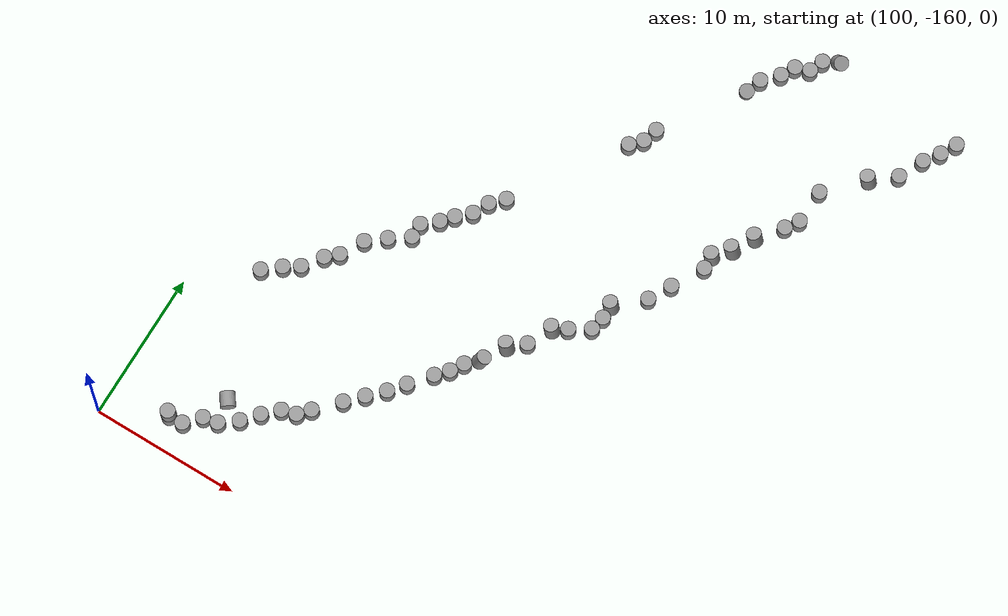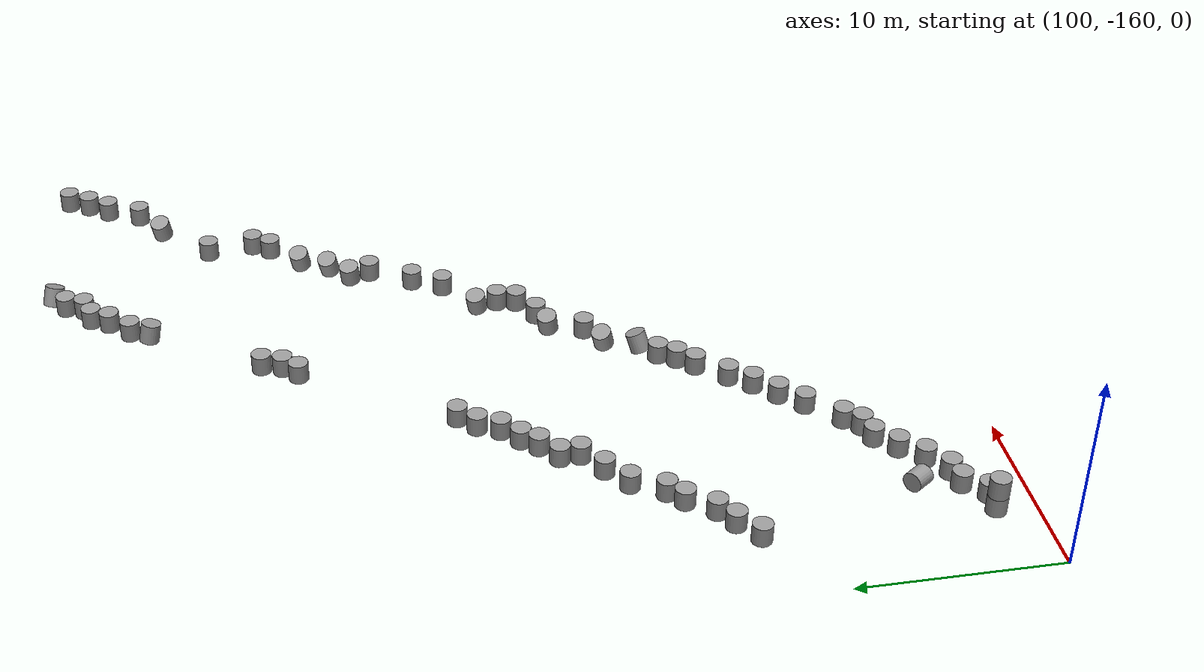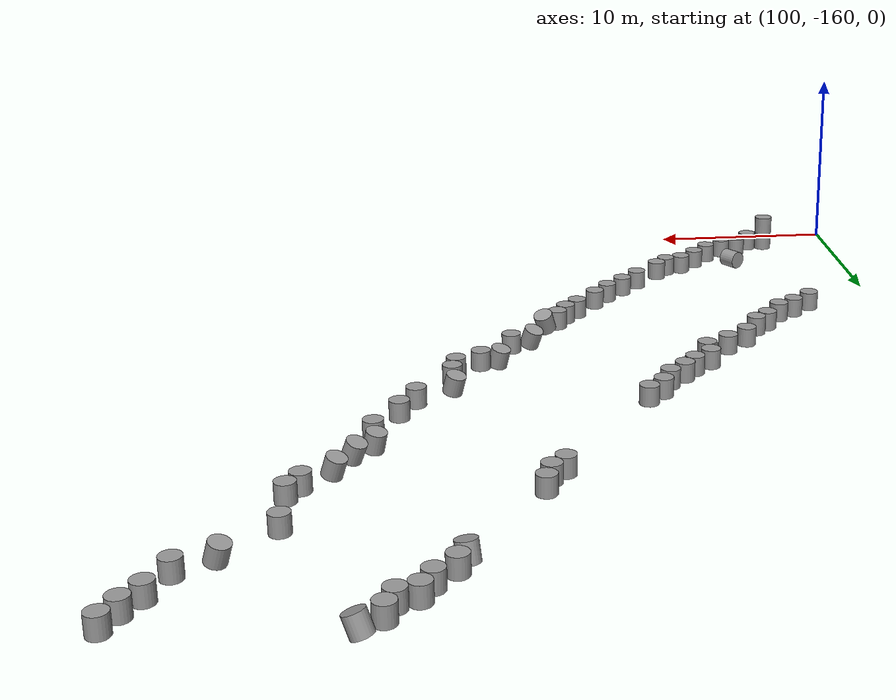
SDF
<sdf version="1.7">
 <world name="default">
  <model name="unit_cylinder_85_clone_244_clone_804">
   <pose>137.566 -116.461 0.451122 0.00022 0.000364 0.000464</pose>
   <link name="link">
    <inertial>
     <mass>1</mass>
     <inertia><ixx>0.145833</ixx><ixy>0</ixy><ixz>0</ixz><iyy>0.145833</iyy><iyz>0</iyz><izz>0.125</izz></inertia>
    </inertial>
    <collision name="collision">
     <geometry><cylinder><radius>0.5</radius><length>1</length></cylinder></geometry>
    </collision>
    <visual name="visual">
     <geometry><cylinder><radius>0.5</radius><length>1</length></cylinder></geometry>
     <material>
      <script><name>Gazebo/Grey</name><uri>file://media/materials/scripts/gazebo.material</uri></script>
     </material>
    </visual>
   </link>
  </model>
  <model name="unit_cylinder_85_clone_244_clone_805">
   <pose>137 -117.517 0.451098 0.000221 0.000364 0.000545</pose>
   <link name="link">
    <inertial>
     <mass>1</mass>
     <inertia><ixx>0.145833</ixx><ixy>0</ixy><ixz>0</ixz><iyy>0.145833</iyy><iyz>0</iyz><izz>0.125</izz></inertia>
    </inertial>
    <collision name="collision">
     <geometry><cylinder><radius>0.5</radius><length>1</length></cylinder></geometry>
    </collision>
    <visual name="visual">
     <geometry><cylinder><radius>0.5</radius><length>1</length></cylinder></geometry>
     <material>
      <script><name>Gazebo/Grey</name><uri>file://media/materials/scripts/gazebo.material</uri></script>
     </material>
    </visual>
   </link>
  </model>
  <model name="unit_cylinder_85_clone_244_clone_806">
   <pose>136.281 -118.544 0.451133 0.000222 0.000363 0.000504</pose>
   <link name="link">
    <inertial>
     <mass>1</mass>
     <inertia><ixx>0.145833</ixx><ixy>0</ixy><ixz>0</ixz><iyy>0.145833</iyy><iyz>0</iyz><izz>0.125</izz></inertia>
    </inertial>
    <collision name="collision">
     <geometry><cylinder><radius>0.5</radius><length>1</length></cylinder></geometry>
    </collision>
    <visual name="visual">
     <geometry><cylinder><radius>0.5</radius><length>1</length></cylinder></geometry>
     <material>
      <script><name>Gazebo/Grey</name><uri>file://media/materials/scripts/gazebo.material</uri></script>
     </material>
    </visual>
   </link>
  </model>
  <model name="unit_cylinder_85_clone_244_clone_811">
   <pose>128.316 -115.558 0.403362 0.201475 0.339756 -0.023781</pose>
   <link name="link">
    <inertial>
     <mass>1</mass>
     <inertia><ixx>0.145833</ixx><ixy>0</ixy><ixz>0</ixz><iyy>0.145833</iyy><iyz>0</iyz><izz>0.125</izz></inertia>
    </inertial>
    <collision name="collision">
     <geometry><cylinder><radius>0.5</radius><length>1</length></cylinder></geometry>
    </collision>
    <visual name="visual">
     <geometry><cylinder><radius>0.5</radius><length>1</length></cylinder></geometry>
     <material>
      <script><name>Gazebo/Grey</name><uri>file://media/materials/scripts/gazebo.material</uri></script>
     </material>
    </visual>
   </link>
  </model>
  <model name="unit_cylinder_85_clone_244_clone_812">
   <pose>127.369 -116.179 0.450855 -0.000849 -0.001486 -0.054355</pose>
   <link name="link">
    <inertial>
     <mass>1</mass>
     <inertia><ixx>0.145833</ixx><ixy>0</ixy><ixz>0</ixz><iyy>0.145833</iyy><iyz>0</iyz><izz>0.125</izz></inertia>
    </inertial>
    <collision name="collision">
     <geometry><cylinder><radius>0.5</radius><length>1</length></cylinder></geometry>
    </collision>
    <visual name="visual">
     <geometry><cylinder><radius>0.5</radius><length>1</length></cylinder></geometry>
     <material>
      <script><name>Gazebo/Grey</name><uri>file://media/materials/scripts/gazebo.material</uri></script>
     </material>
    </visual>
   </link>
  </model>
  <model name="unit_cylinder_85_clone_244_clone_813">
   <pose>126.992 -117.105 0.451271 -4e-06 -1.8e-05 -0.402812</pose>
   <link name="link">
    <inertial>
     <mass>1</mass>
     <inertia><ixx>0.145833</ixx><ixy>0</ixy><ixz>0</ixz><iyy>0.145833</iyy><iyz>0</iyz><izz>0.125</izz></inertia>
    </inertial>
    <collision name="collision">
     <geometry><cylinder><radius>0.5</radius><length>1</length></cylinder></geometry>
    </collision>
    <visual name="visual">
     <geometry><cylinder><radius>0.5</radius><length>1</length></cylinder></geometry>
     <material>
      <script><name>Gazebo/Grey</name><uri>file://media/materials/scripts/gazebo.material</uri></script>
     </material>
    </visual>
   </link>
  </model>
  <model name="unit_cylinder_85_clone_244_clone_814">
   <pose>126.053 -117.448 0.450006 1.2e-05 -3e-06 -0.318125</pose>
   <link name="link">
    <inertial>
     <mass>1</mass>
     <inertia><ixx>0.145833</ixx><ixy>0</ixy><ixz>0</ixz><iyy>0.145833</iyy><iyz>0</iyz><izz>0.125</izz></inertia>
    </inertial>
    <collision name="collision">
     <geometry><cylinder><radius>0.5</radius><length>1</length></cylinder></geometry>
    </collision>
    <visual name="visual">
     <geometry><cylinder><radius>0.5</radius><length>1</length></cylinder></geometry>
     <material>
      <script><name>Gazebo/Grey</name><uri>file://media/materials/scripts/gazebo.material</uri></script>
     </material>
    </visual>
   </link>
  </model>
  <model name="unit_cylinder_85_clone_244_clone_815">
   <pose>125.552 -118.352 0.450065 -9.3e-05 -8.9e-05 0.246532</pose>
   <link name="link">
    <inertial>
     <mass>1</mass>
     <inertia><ixx>0.145833</ixx><ixy>0</ixy><ixz>0</ixz><iyy>0.145833</iyy><iyz>0</iyz><izz>0.125</izz></inertia>
    </inertial>
    <collision name="collision">
     <geometry><cylinder><radius>0.5</radius><length>1</length></cylinder></geometry>
    </collision>
    <visual name="visual">
     <geometry><cylinder><radius>0.5</radius><length>1</length></cylinder></geometry>
     <material>
      <script><name>Gazebo/Grey</name><uri>file://media/materials/scripts/gazebo.material</uri></script>
     </material>
    </visual>
   </link>
  </model>
  <model name="unit_cylinder_85_clone_244_clone_835">
   <pose>135.488 -120.213 0.451052 0.000219 0.000366 0.000501</pose>
   <link name="link">
    <inertial>
     <mass>1</mass>
     <inertia><ixx>0.145833</ixx><ixy>0</ixy><ixz>0</ixz><iyy>0.145833</iyy><iyz>0</iyz><izz>0.125</izz></inertia>
    </inertial>
    <collision name="collision">
     <geometry><cylinder><radius>0.5</radius><length>1</length></cylinder></geometry>
    </collision>
    <visual name="visual">
     <geometry><cylinder><radius>0.5</radius><length>1</length></cylinder></geometry>
     <material>
      <script><name>Gazebo/Grey</name><uri>file://media/materials/scripts/gazebo.material</uri></script>
     </material>
    </visual>
   </link>
  </model>
  <model name="unit_cylinder_85_clone_244_clone_836">
   <pose>133.873 -121.33 0.377891 -0.161342 -0.262968 0.019333</pose>
   <link name="link">
    <inertial>
     <mass>1</mass>
     <inertia><ixx>0.145833</ixx><ixy>0</ixy><ixz>0</ixz><iyy>0.145833</iyy><iyz>0</iyz><izz>0.125</izz></inertia>
    </inertial>
    <collision name="collision">
     <geometry><cylinder><radius>0.5</radius><length>1</length></cylinder></geometry>
    </collision>
    <visual name="visual">
     <geometry><cylinder><radius>0.5</radius><length>1</length></cylinder></geometry>
     <material>
      <script><name>Gazebo/Grey</name><uri>file://media/materials/scripts/gazebo.material</uri></script>
     </material>
    </visual>
   </link>
  </model>
  <model name="unit_cylinder_85_clone_244_clone_837">
   <pose>131.661 -123.752 0.250003 -6e-06 -0 0.000555</pose>
   <link name="link">
    <inertial>
     <mass>1</mass>
     <inertia><ixx>0.145833</ixx><ixy>0</ixy><ixz>0</ixz><iyy>0.145833</iyy><iyz>0</iyz><izz>0.125</izz></inertia>
    </inertial>
    <collision name="collision">
     <geometry><cylinder><radius>0.5</radius><length>1</length></cylinder></geometry>
    </collision>
    <visual name="visual">
     <geometry><cylinder><radius>0.5</radius><length>1</length></cylinder></geometry>
     <material>
      <script><name>Gazebo/Grey</name><uri>file://media/materials/scripts/gazebo.material</uri></script>
     </material>
    </visual>
   </link>
  </model>
  <model name="unit_cylinder_85_clone_244_clone_838">
   <pose>131.579 -126.118 0.451194 0.000212 0.00037 0.000498</pose>
   <link name="link">
    <inertial>
     <mass>1</mass>
     <inertia><ixx>0.145833</ixx><ixy>0</ixy><ixz>0</ixz><iyy>0.145833</iyy><iyz>0</iyz><izz>0.125</izz></inertia>
    </inertial>
    <collision name="collision">
     <geometry><cylinder><radius>0.5</radius><length>1</length></cylinder></geometry>
    </collision>
    <visual name="visual">
     <geometry><cylinder><radius>0.5</radius><length>1</length></cylinder></geometry>
     <material>
      <script><name>Gazebo/Grey</name><uri>file://media/materials/scripts/gazebo.material</uri></script>
     </material>
    </visual>
   </link>
  </model>
  <model name="unit_cylinder_85_clone_244_clone_839">
   <pose>131 -127 0.451211 0.000222 0.000367 0.000508</pose>
   <link name="link">
    <inertial>
     <mass>1</mass>
     <inertia><ixx>0.145833</ixx><ixy>0</ixy><ixz>0</ixz><iyy>0.145833</iyy><iyz>0</iyz><izz>0.125</izz></inertia>
    </inertial>
    <collision name="collision">
     <geometry><cylinder><radius>0.5</radius><length>1</length></cylinder></geometry>
    </collision>
    <visual name="visual">
     <geometry><cylinder><radius>0.5</radius><length>1</length></cylinder></geometry>
     <material>
      <script><name>Gazebo/Grey</name><uri>file://media/materials/scripts/gazebo.material</uri></script>
     </material>
    </visual>
   </link>
  </model>
  <model name="unit_cylinder_85_clone_244_clone_840">
   <pose>129.641 -128.464 0.386634 -0.1767 -0.28632 0.023727</pose>
   <link name="link">
    <inertial>
     <mass>1</mass>
     <inertia><ixx>0.145833</ixx><ixy>0</ixy><ixz>0</ixz><iyy>0.145833</iyy><iyz>0</iyz><izz>0.125</izz></inertia>
    </inertial>
    <collision name="collision">
     <geometry><cylinder><radius>0.5</radius><length>1</length></cylinder></geometry>
    </collision>
    <visual name="visual">
     <geometry><cylinder><radius>0.5</radius><length>1</length></cylinder></geometry>
     <material>
      <script><name>Gazebo/Grey</name><uri>file://media/materials/scripts/gazebo.material</uri></script>
     </material>
    </visual>
   </link>
  </model>
  <model name="unit_cylinder_85_clone_244_clone_841">
   <pose>128.831 -129.906 0.400487 -0.201463 -0.327072 0.026193</pose>
   <link name="link">
    <inertial>
     <mass>1</mass>
     <inertia><ixx>0.145833</ixx><ixy>0</ixy><ixz>0</ixz><iyy>0.145833</iyy><iyz>0</iyz><izz>0.125</izz></inertia>
    </inertial>
    <collision name="collision">
     <geometry><cylinder><radius>0.5</radius><length>1</length></cylinder></geometry>
    </collision>
    <visual name="visual">
     <geometry><cylinder><radius>0.5</radius><length>1</length></cylinder></geometry>
     <material>
      <script><name>Gazebo/Grey</name><uri>file://media/materials/scripts/gazebo.material</uri></script>
     </material>
    </visual>
   </link>
  </model>
  <model name="unit_cylinder_85_clone_244_clone_842">
   <pose>127.913 -130.935 0.351498 -0.125713 -0.194881 0.038143</pose>
   <link name="link">
    <inertial>
     <mass>1</mass>
     <inertia><ixx>0.145833</ixx><ixy>0</ixy><ixz>0</ixz><iyy>0.145833</iyy><iyz>0</iyz><izz>0.125</izz></inertia>
    </inertial>
    <collision name="collision">
     <geometry><cylinder><radius>0.5</radius><length>1</length></cylinder></geometry>
    </collision>
    <visual name="visual">
     <geometry><cylinder><radius>0.5</radius><length>1</length></cylinder></geometry>
     <material>
      <script><name>Gazebo/Grey</name><uri>file://media/materials/scripts/gazebo.material</uri></script>
     </material>
    </visual>
   </link>
  </model>
  <model name="unit_cylinder_85_clone_244_clone_843">
   <pose>128 -132 0.451214 0.000223 0.000361 0.000501</pose>
   <link name="link">
    <inertial>
     <mass>1</mass>
     <inertia><ixx>0.145833</ixx><ixy>0</ixy><ixz>0</ixz><iyy>0.145833</iyy><iyz>0</iyz><izz>0.125</izz></inertia>
    </inertial>
    <collision name="collision">
     <geometry><cylinder><radius>0.5</radius><length>1</length></cylinder></geometry>
    </collision>
    <visual name="visual">
     <geometry><cylinder><radius>0.5</radius><length>1</length></cylinder></geometry>
     <material>
      <script><name>Gazebo/Grey</name><uri>file://media/materials/scripts/gazebo.material</uri></script>
     </material>
    </visual>
   </link>
  </model>
  <model name="unit_cylinder_85_clone_244_clone_844">
   <pose>126.807 -134.097 0.451195 0.000221 0.000364 0.000498</pose>
   <link name="link">
    <inertial>
     <mass>1</mass>
     <inertia><ixx>0.145833</ixx><ixy>0</ixy><ixz>0</ixz><iyy>0.145833</iyy><iyz>0</iyz><izz>0.125</izz></inertia>
    </inertial>
    <collision name="collision">
     <geometry><cylinder><radius>0.5</radius><length>1</length></cylinder></geometry>
    </collision>
    <visual name="visual">
     <geometry><cylinder><radius>0.5</radius><length>1</length></cylinder></geometry>
     <material>
      <script><name>Gazebo/Grey</name><uri>file://media/materials/scripts/gazebo.material</uri></script>
     </material>
    </visual>
   </link>
  </model>
  <model name="unit_cylinder_85_clone_244_clone_845">
   <pose>126 -135.595 0.451155 0.000253 0.000355 0.000451</pose>
   <link name="link">
    <inertial>
     <mass>1</mass>
     <inertia><ixx>0.145833</ixx><ixy>0</ixy><ixz>0</ixz><iyy>0.145833</iyy><iyz>0</iyz><izz>0.125</izz></inertia>
    </inertial>
    <collision name="collision">
     <geometry><cylinder><radius>0.5</radius><length>1</length></cylinder></geometry>
    </collision>
    <visual name="visual">
     <geometry><cylinder><radius>0.5</radius><length>1</length></cylinder></geometry>
     <material>
      <script><name>Gazebo/Grey</name><uri>file://media/materials/scripts/gazebo.material</uri></script>
     </material>
    </visual>
   </link>
  </model>
  <model name="unit_cylinder_85_clone_244_clone_846">
   <pose>124.126 -137.104 0.37052 -0.170477 -0.229921 0.027141</pose>
   <link name="link">
    <inertial>
     <mass>1</mass>
     <inertia><ixx>0.145833</ixx><ixy>0</ixy><ixz>0</ixz><iyy>0.145833</iyy><iyz>0</iyz><izz>0.125</izz></inertia>
    </inertial>
    <collision name="collision">
     <geometry><cylinder><radius>0.5</radius><length>1</length></cylinder></geometry>
    </collision>
    <visual name="visual">
     <geometry><cylinder><radius>0.5</radius><length>1</length></cylinder></geometry>
     <material>
      <script><name>Gazebo/Grey</name><uri>file://media/materials/scripts/gazebo.material</uri></script>
     </material>
    </visual>
   </link>
  </model>
  <model name="unit_cylinder_85_clone_244_clone_847">
   <pose>123.965 -139.158 0.450972 0.000244 0.000343 0.001516</pose>
   <link name="link">
    <inertial>
     <mass>1</mass>
     <inertia><ixx>0.145833</ixx><ixy>0</ixy><ixz>0</ixz><iyy>0.145833</iyy><iyz>0</iyz><izz>0.125</izz></inertia>
    </inertial>
    <collision name="collision">
     <geometry><cylinder><radius>0.5</radius><length>1</length></cylinder></geometry>
    </collision>
    <visual name="visual">
     <geometry><cylinder><radius>0.5</radius><length>1</length></cylinder></geometry>
     <material>
      <script><name>Gazebo/Grey</name><uri>file://media/materials/scripts/gazebo.material</uri></script>
     </material>
    </visual>
   </link>
  </model>
  <model name="unit_cylinder_85_clone_244_clone_848">
   <pose>121.72 -140.397 0.363058 -0.155332 -0.214027 0.015518</pose>
   <link name="link">
    <inertial>
     <mass>1</mass>
     <inertia><ixx>0.145833</ixx><ixy>0</ixy><ixz>0</ixz><iyy>0.145833</iyy><iyz>0</iyz><izz>0.125</izz></inertia>
    </inertial>
    <collision name="collision">
     <geometry><cylinder><radius>0.5</radius><length>1</length></cylinder></geometry>
    </collision>
    <visual name="visual">
     <geometry><cylinder><radius>0.5</radius><length>1</length></cylinder></geometry>
     <material>
      <script><name>Gazebo/Grey</name><uri>file://media/materials/scripts/gazebo.material</uri></script>
     </material>
    </visual>
   </link>
  </model>
  <model name="unit_cylinder_85_clone_244_clone_849">
   <pose>120.977 -142.13 0.451217 0.000267 0.000318 0.000527</pose>
   <link name="link">
    <inertial>
     <mass>1</mass>
     <inertia><ixx>0.145833</ixx><ixy>0</ixy><ixz>0</ixz><iyy>0.145833</iyy><iyz>0</iyz><izz>0.125</izz></inertia>
    </inertial>
    <collision name="collision">
     <geometry><cylinder><radius>0.5</radius><length>1</length></cylinder></geometry>
    </collision>
    <visual name="visual">
     <geometry><cylinder><radius>0.5</radius><length>1</length></cylinder></geometry>
     <material>
      <script><name>Gazebo/Grey</name><uri>file://media/materials/scripts/gazebo.material</uri></script>
     </material>
    </visual>
   </link>
  </model>
  <model name="unit_cylinder_85_clone_244_clone_850">
   <pose>119.856 -142.882 0.3975 -0.249104 -0.279017 0.034082</pose>
   <link name="link">
    <inertial>
     <mass>1</mass>
     <inertia><ixx>0.145833</ixx><ixy>0</ixy><ixz>0</ixz><iyy>0.145833</iyy><iyz>0</iyz><izz>0.125</izz></inertia>
    </inertial>
    <collision name="collision">
     <geometry><cylinder><radius>0.5</radius><length>1</length></cylinder></geometry>
    </collision>
    <visual name="visual">
     <geometry><cylinder><radius>0.5</radius><length>1</length></cylinder></geometry>
     <material>
      <script><name>Gazebo/Grey</name><uri>file://media/materials/scripts/gazebo.material</uri></script>
     </material>
    </visual>
   </link>
  </model>
  <model name="unit_cylinder_85_clone_244_clone_851">
   <pose>119.004 -144.514 0.604512 -0.275432 0.283723 0.059481</pose>
   <link name="link">
    <inertial>
     <mass>1</mass>
     <inertia><ixx>0.145833</ixx><ixy>0</ixy><ixz>0</ixz><iyy>0.145833</iyy><iyz>0</iyz><izz>0.125</izz></inertia>
    </inertial>
    <collision name="collision">
     <geometry><cylinder><radius>0.5</radius><length>1</length></cylinder></geometry>
    </collision>
    <visual name="visual">
     <geometry><cylinder><radius>0.5</radius><length>1</length></cylinder></geometry>
     <material>
      <script><name>Gazebo/Grey</name><uri>file://media/materials/scripts/gazebo.material</uri></script>
     </material>
    </visual>
   </link>
  </model>
  <model name="unit_cylinder_85_clone_244_clone_852">
   <pose>118.233 -145.371 0.451203 0.000239 0.000326 -0.069465</pose>
   <link name="link">
    <inertial>
     <mass>1</mass>
     <inertia><ixx>0.145833</ixx><ixy>0</ixy><ixz>0</ixz><iyy>0.145833</iyy><iyz>0</iyz><izz>0.125</izz></inertia>
    </inertial>
    <collision name="collision">
     <geometry><cylinder><radius>0.5</radius><length>1</length></cylinder></geometry>
    </collision>
    <visual name="visual">
     <geometry><cylinder><radius>0.5</radius><length>1</length></cylinder></geometry>
     <material>
      <script><name>Gazebo/Grey</name><uri>file://media/materials/scripts/gazebo.material</uri></script>
     </material>
    </visual>
   </link>
  </model>
  <model name="unit_cylinder_85_clone_244_clone_853">
   <pose>120.613 -125.726 0.450003 -2e-06 7e-06 0.00051</pose>
   <link name="link">
    <inertial>
     <mass>1</mass>
     <inertia><ixx>0.145833</ixx><ixy>0</ixy><ixz>0</ixz><iyy>0.145833</iyy><iyz>0</iyz><izz>0.125</izz></inertia>
    </inertial>
    <collision name="collision">
     <geometry><cylinder><radius>0.5</radius><length>1</length></cylinder></geometry>
    </collision>
    <visual name="visual">
     <geometry><cylinder><radius>0.5</radius><length>1</length></cylinder></geometry>
     <material>
      <script><name>Gazebo/Grey</name><uri>file://media/materials/scripts/gazebo.material</uri></script>
     </material>
    </visual>
   </link>
  </model>
  <model name="unit_cylinder_85_clone_244_clone_854">
   <pose>119.609 -127.473 0.449997 4e-06 -0 0.00372</pose>
   <link name="link">
    <inertial>
     <mass>1</mass>
     <inertia><ixx>0.145833</ixx><ixy>0</ixy><ixz>0</ixz><iyy>0.145833</iyy><iyz>0</iyz><izz>0.125</izz></inertia>
    </inertial>
    <collision name="collision">
     <geometry><cylinder><radius>0.5</radius><length>1</length></cylinder></geometry>
    </collision>
    <visual name="visual">
     <geometry><cylinder><radius>0.5</radius><length>1</length></cylinder></geometry>
     <material>
      <script><name>Gazebo/Grey</name><uri>file://media/materials/scripts/gazebo.material</uri></script>
     </material>
    </visual>
   </link>
  </model>
  <model name="unit_cylinder_85_clone_244_clone_855">
   <pose>120.298 -126.747 0.450669 -0.0007 -0.001152 -0.021455</pose>
   <link name="link">
    <inertial>
     <mass>1</mass>
     <inertia><ixx>0.145833</ixx><ixy>0</ixy><ixz>0</ixz><iyy>0.145833</iyy><iyz>0</iyz><izz>0.125</izz></inertia>
    </inertial>
    <collision name="collision">
     <geometry><cylinder><radius>0.5</radius><length>1</length></cylinder></geometry>
    </collision>
    <visual name="visual">
     <geometry><cylinder><radius>0.5</radius><length>1</length></cylinder></geometry>
     <material>
      <script><name>Gazebo/Grey</name><uri>file://media/materials/scripts/gazebo.material</uri></script>
     </material>
    </visual>
   </link>
  </model>
  <model name="unit_cylinder_85_clone_244_clone_856">
   <pose>114.827 -134.693 0.450727 -0.00086 -0.001175 0.0007</pose>
   <link name="link">
    <inertial>
     <mass>1</mass>
     <inertia><ixx>0.145833</ixx><ixy>0</ixy><ixz>0</ixz><iyy>0.145833</iyy><iyz>0</iyz><izz>0.125</izz></inertia>
    </inertial>
    <collision name="collision">
     <geometry><cylinder><radius>0.5</radius><length>1</length></cylinder></geometry>
    </collision>
    <visual name="visual">
     <geometry><cylinder><radius>0.5</radius><length>1</length></cylinder></geometry>
     <material>
      <script><name>Gazebo/Grey</name><uri>file://media/materials/scripts/gazebo.material</uri></script>
     </material>
    </visual>
   </link>
  </model>
  <model name="unit_cylinder_85_clone_244_clone_857">
   <pose>114 -135.533 0.450346 -0.000527 -0.000449 -0.000337</pose>
   <link name="link">
    <inertial>
     <mass>1</mass>
     <inertia><ixx>0.145833</ixx><ixy>0</ixy><ixz>0</ixz><iyy>0.145833</iyy><iyz>0</iyz><izz>0.125</izz></inertia>
    </inertial>
    <collision name="collision">
     <geometry><cylinder><radius>0.5</radius><length>1</length></cylinder></geometry>
    </collision>
    <visual name="visual">
     <geometry><cylinder><radius>0.5</radius><length>1</length></cylinder></geometry>
     <material>
      <script><name>Gazebo/Grey</name><uri>file://media/materials/scripts/gazebo.material</uri></script>
     </material>
    </visual>
   </link>
  </model>
  <model name="unit_cylinder_85_clone_244_clone_858">
   <pose>113.489 -136.604 0.450807 -0.000978 -0.001287 -0.010435</pose>
   <link name="link">
    <inertial>
     <mass>1</mass>
     <inertia><ixx>0.145833</ixx><ixy>0</ixy><ixz>0</ixz><iyy>0.145833</iyy><iyz>0</iyz><izz>0.125</izz></inertia>
    </inertial>
    <collision name="collision">
     <geometry><cylinder><radius>0.5</radius><length>1</length></cylinder></geometry>
    </collision>
    <visual name="visual">
     <geometry><cylinder><radius>0.5</radius><length>1</length></cylinder></geometry>
     <material>
      <script><name>Gazebo/Grey</name><uri>file://media/materials/scripts/gazebo.material</uri></script>
     </material>
    </visual>
   </link>
  </model>
  <model name="unit_cylinder_85_clone_244_clone_859">
   <pose>112.616 -137.417 0.450651 -0.000904 -0.000939 0.104141</pose>
   <link name="link">
    <inertial>
     <mass>1</mass>
     <inertia><ixx>0.145833</ixx><ixy>0</ixy><ixz>0</ixz><iyy>0.145833</iyy><iyz>0</iyz><izz>0.125</izz></inertia>
    </inertial>
    <collision name="collision">
     <geometry><cylinder><radius>0.5</radius><length>1</length></cylinder></geometry>
    </collision>
    <visual name="visual">
     <geometry><cylinder><radius>0.5</radius><length>1</length></cylinder></geometry>
     <material>
      <script><name>Gazebo/Grey</name><uri>file://media/materials/scripts/gazebo.material</uri></script>
     </material>
    </visual>
   </link>
  </model>
  <model name="unit_cylinder_85_clone_244_clone_860">
   <pose>111.971 -138.181 0.450532 -0.000611 -0.000873 -0.041809</pose>
   <link name="link">
    <inertial>
     <mass>1</mass>
     <inertia><ixx>0.145833</ixx><ixy>0</ixy><ixz>0</ixz><iyy>0.145833</iyy><iyz>0</iyz><izz>0.125</izz></inertia>
    </inertial>
    <collision name="collision">
     <geometry><cylinder><radius>0.5</radius><length>1</length></cylinder></geometry>
    </collision>
    <visual name="visual">
     <geometry><cylinder><radius>0.5</radius><length>1</length></cylinder></geometry>
     <material>
      <script><name>Gazebo/Grey</name><uri>file://media/materials/scripts/gazebo.material</uri></script>
     </material>
    </visual>
   </link>
  </model>
  <model name="unit_cylinder_85_clone_244_clone_861">
   <pose>110.997 -139 0.450021 -4.1e-05 -0 -0.00689</pose>
   <link name="link">
    <inertial>
     <mass>1</mass>
     <inertia><ixx>0.145833</ixx><ixy>0</ixy><ixz>0</ixz><iyy>0.145833</iyy><iyz>0</iyz><izz>0.125</izz></inertia>
    </inertial>
    <collision name="collision">
     <geometry><cylinder><radius>0.5</radius><length>1</length></cylinder></geometry>
    </collision>
    <visual name="visual">
     <geometry><cylinder><radius>0.5</radius><length>1</length></cylinder></geometry>
     <material>
      <script><name>Gazebo/Grey</name><uri>file://media/materials/scripts/gazebo.material</uri></script>
     </material>
    </visual>
   </link>
  </model>
  <model name="unit_cylinder_85_clone_244_clone_862">
   <pose>110.998 -140 0.451264 -5.9e-05 -0.000127 0.011875</pose>
   <link name="link">
    <inertial>
     <mass>1</mass>
     <inertia><ixx>0.145833</ixx><ixy>0</ixy><ixz>0</ixz><iyy>0.145833</iyy><iyz>0</iyz><izz>0.125</izz></inertia>
    </inertial>
    <collision name="collision">
     <geometry><cylinder><radius>0.5</radius><length>1</length></cylinder></geometry>
    </collision>
    <visual name="visual">
     <geometry><cylinder><radius>0.5</radius><length>1</length></cylinder></geometry>
     <material>
      <script><name>Gazebo/Grey</name><uri>file://media/materials/scripts/gazebo.material</uri></script>
     </material>
    </visual>
   </link>
  </model>
  <model name="unit_cylinder_85_clone_244_clone_863">
   <pose>109.729 -140.886 0.449997 -6e-06 0 0.000494</pose>
   <link name="link">
    <inertial>
     <mass>1</mass>
     <inertia><ixx>0.145833</ixx><ixy>0</ixy><ixz>0</ixz><iyy>0.145833</iyy><iyz>0</iyz><izz>0.125</izz></inertia>
    </inertial>
    <collision name="collision">
     <geometry><cylinder><radius>0.5</radius><length>1</length></cylinder></geometry>
    </collision>
    <visual name="visual">
     <geometry><cylinder><radius>0.5</radius><length>1</length></cylinder></geometry>
     <material>
      <script><name>Gazebo/Grey</name><uri>file://media/materials/scripts/gazebo.material</uri></script>
     </material>
    </visual>
   </link>
  </model>
  <model name="unit_cylinder_85_clone_244_clone_864">
   <pose>108.534 -141.847 0.449991 0 -0 0.000518</pose>
   <link name="link">
    <inertial>
     <mass>1</mass>
     <inertia><ixx>0.145833</ixx><ixy>0</ixy><ixz>0</ixz><iyy>0.145833</iyy><iyz>0</iyz><izz>0.125</izz></inertia>
    </inertial>
    <collision name="collision">
     <geometry><cylinder><radius>0.5</radius><length>1</length></cylinder></geometry>
    </collision>
    <visual name="visual">
     <geometry><cylinder><radius>0.5</radius><length>1</length></cylinder></geometry>
     <material>
      <script><name>Gazebo/Grey</name><uri>file://media/materials/scripts/gazebo.material</uri></script>
     </material>
    </visual>
   </link>
  </model>
  <model name="unit_cylinder_85_clone_244_clone_865">
   <pose>107.674 -143.392 0.450784 -0.001135 -0.001084 0.021997</pose>
   <link name="link">
    <inertial>
     <mass>1</mass>
     <inertia><ixx>0.145833</ixx><ixy>0</ixy><ixz>0</ixz><iyy>0.145833</iyy><iyz>0</iyz><izz>0.125</izz></inertia>
    </inertial>
    <collision name="collision">
     <geometry><cylinder><radius>0.5</radius><length>1</length></cylinder></geometry>
    </collision>
    <visual name="visual">
     <geometry><cylinder><radius>0.5</radius><length>1</length></cylinder></geometry>
     <material>
      <script><name>Gazebo/Grey</name><uri>file://media/materials/scripts/gazebo.material</uri></script>
     </material>
    </visual>
   </link>
  </model>
  <model name="unit_cylinder_85_clone_244_clone_866">
   <pose>106.913 -144.076 0.450734 -0.001039 -0.001039 0.003421</pose>
   <link name="link">
    <inertial>
     <mass>1</mass>
     <inertia><ixx>0.145833</ixx><ixy>0</ixy><ixz>0</ixz><iyy>0.145833</iyy><iyz>0</iyz><izz>0.125</izz></inertia>
    </inertial>
    <collision name="collision">
     <geometry><cylinder><radius>0.5</radius><length>1</length></cylinder></geometry>
    </collision>
    <visual name="visual">
     <geometry><cylinder><radius>0.5</radius><length>1</length></cylinder></geometry>
     <material>
      <script><name>Gazebo/Grey</name><uri>file://media/materials/scripts/gazebo.material</uri></script>
     </material>
    </visual>
   </link>
  </model>
  <model name="unit_cylinder_85_clone_244_clone_867">
   <pose>105.977 -145.357 0.451018 -0.001439 -0.001442 0.000491</pose>
   <link name="link">
    <inertial>
     <mass>1</mass>
     <inertia><ixx>0.145833</ixx><ixy>0</ixy><ixz>0</ixz><iyy>0.145833</iyy><iyz>0</iyz><izz>0.125</izz></inertia>
    </inertial>
    <collision name="collision">
     <geometry><cylinder><radius>0.5</radius><length>1</length></cylinder></geometry>
    </collision>
    <visual name="visual">
     <geometry><cylinder><radius>0.5</radius><length>1</length></cylinder></geometry>
     <material>
      <script><name>Gazebo/Grey</name><uri>file://media/materials/scripts/gazebo.material</uri></script>
     </material>
    </visual>
   </link>
  </model>
  <model name="unit_cylinder_85_clone_244_clone_868">
   <pose>105 -145.999 0.450758 -0.001151 -0.000997 0.001337</pose>
   <link name="link">
    <inertial>
     <mass>1</mass>
     <inertia><ixx>0.145833</ixx><ixy>0</ixy><ixz>0</ixz><iyy>0.145833</iyy><iyz>0</iyz><izz>0.125</izz></inertia>
    </inertial>
    <collision name="collision">
     <geometry><cylinder><radius>0.5</radius><length>1</length></cylinder></geometry>
    </collision>
    <visual name="visual">
     <geometry><cylinder><radius>0.5</radius><length>1</length></cylinder></geometry>
     <material>
      <script><name>Gazebo/Grey</name><uri>file://media/materials/scripts/gazebo.material</uri></script>
     </material>
    </visual>
   </link>
  </model>
  <model name="unit_cylinder_85_clone_244_clone_870">
   <pose>103.901 -146.909 0.451089 -0.001103 -0.000336 0.03369</pose>
   <link name="link">
    <inertial>
     <mass>1</mass>
     <inertia><ixx>0.145833</ixx><ixy>0</ixy><ixz>0</ixz><iyy>0.145833</iyy><iyz>0</iyz><izz>0.125</izz></inertia>
    </inertial>
    <collision name="collision">
     <geometry><cylinder><radius>0.5</radius><length>1</length></cylinder></geometry>
    </collision>
    <visual name="visual">
     <geometry><cylinder><radius>0.5</radius><length>1</length></cylinder></geometry>
     <material>
      <script><name>Gazebo/Grey</name><uri>file://media/materials/scripts/gazebo.material</uri></script>
     </material>
    </visual>
   </link>
  </model>
  <model name="unit_cylinder_85_clone_244_clone_877">
   <pose>122.689 -139.964 0.451214 0.000239 0.000335 -0.00461</pose>
   <link name="link">
    <inertial>
     <mass>1</mass>
     <inertia><ixx>0.145833</ixx><ixy>0</ixy><ixz>0</ixz><iyy>0.145833</iyy><iyz>0</iyz><izz>0.125</izz></inertia>
    </inertial>
    <collision name="collision">
     <geometry><cylinder><radius>0.5</radius><length>1</length></cylinder></geometry>
    </collision>
    <visual name="visual">
     <geometry><cylinder><radius>0.5</radius><length>1</length></cylinder></geometry>
     <material>
      <script><name>Gazebo/Grey</name><uri>file://media/materials/scripts/gazebo.material</uri></script>
     </material>
    </visual>
   </link>
  </model>
  <model name="unit_cylinder_85_clone_244_clone_878">
   <pose>124.182 -138.182 0.451148 0.00025 0.000353 -0.001191</pose>
   <link name="link">
    <inertial>
     <mass>1</mass>
     <inertia><ixx>0.145833</ixx><ixy>0</ixy><ixz>0</ixz><iyy>0.145833</iyy><iyz>0</iyz><izz>0.125</izz></inertia>
    </inertial>
    <collision name="collision">
     <geometry><cylinder><radius>0.5</radius><length>1</length></cylinder></geometry>
    </collision>
    <visual name="visual">
     <geometry><cylinder><radius>0.5</radius><length>1</length></cylinder></geometry>
     <material>
      <script><name>Gazebo/Grey</name><uri>file://media/materials/scripts/gazebo.material</uri></script>
     </material>
    </visual>
   </link>
  </model>
  <model name="unit_cylinder_85_clone_244_clone_879">
   <pose>117.708 -146.222 0.451144 0.00026 0.000307 0.003423</pose>
   <link name="link">
    <inertial>
     <mass>1</mass>
     <inertia><ixx>0.145833</ixx><ixy>0</ixy><ixz>0</ixz><iyy>0.145833</iyy><iyz>0</iyz><izz>0.125</izz></inertia>
    </inertial>
    <collision name="collision">
     <geometry><cylinder><radius>0.5</radius><length>1</length></cylinder></geometry>
    </collision>
    <visual name="visual">
     <geometry><cylinder><radius>0.5</radius><length>1</length></cylinder></geometry>
     <material>
      <script><name>Gazebo/Grey</name><uri>file://media/materials/scripts/gazebo.material</uri></script>
     </material>
    </visual>
   </link>
  </model>
  <model name="unit_cylinder_85_clone_244_clone_880">
   <pose>117 -147 0.45115 0.000277 0.000283 0.000467</pose>
   <link name="link">
    <inertial>
     <mass>1</mass>
     <inertia><ixx>0.145833</ixx><ixy>0</ixy><ixz>0</ixz><iyy>0.145833</iyy><iyz>0</iyz><izz>0.125</izz></inertia>
    </inertial>
    <collision name="collision">
     <geometry><cylinder><radius>0.5</radius><length>1</length></cylinder></geometry>
    </collision>
    <visual name="visual">
     <geometry><cylinder><radius>0.5</radius><length>1</length></cylinder></geometry>
     <material>
      <script><name>Gazebo/Grey</name><uri>file://media/materials/scripts/gazebo.material</uri></script>
     </material>
    </visual>
   </link>
  </model>
  <model name="unit_cylinder_85_clone_244_clone_881">
   <pose>115.835 -148.389 0.451107 0.000276 0.000276 0.000487</pose>
   <link name="link">
    <inertial>
     <mass>1</mass>
     <inertia><ixx>0.145833</ixx><ixy>0</ixy><ixz>0</ixz><iyy>0.145833</iyy><iyz>0</iyz><izz>0.125</izz></inertia>
    </inertial>
    <collision name="collision">
     <geometry><cylinder><radius>0.5</radius><length>1</length></cylinder></geometry>
    </collision>
    <visual name="visual">
     <geometry><cylinder><radius>0.5</radius><length>1</length></cylinder></geometry>
     <material>
      <script><name>Gazebo/Grey</name><uri>file://media/materials/scripts/gazebo.material</uri></script>
     </material>
    </visual>
   </link>
  </model>
  <model name="unit_cylinder_85_clone_244_clone_882">
   <pose>115 -149.431 0.451047 0.000275 0.000285 0.000503</pose>
   <link name="link">
    <inertial>
     <mass>1</mass>
     <inertia><ixx>0.145833</ixx><ixy>0</ixy><ixz>0</ixz><iyy>0.145833</iyy><iyz>0</iyz><izz>0.125</izz></inertia>
    </inertial>
    <collision name="collision">
     <geometry><cylinder><radius>0.5</radius><length>1</length></cylinder></geometry>
    </collision>
    <visual name="visual">
     <geometry><cylinder><radius>0.5</radius><length>1</length></cylinder></geometry>
     <material>
      <script><name>Gazebo/Grey</name><uri>file://media/materials/scripts/gazebo.material</uri></script>
     </material>
    </visual>
   </link>
  </model>
  <model name="unit_cylinder_85_clone_244_clone_883">
   <pose>114 -150.437 0.451061 0.000275 0.000287 0.000495</pose>
   <link name="link">
    <inertial>
     <mass>1</mass>
     <inertia><ixx>0.145833</ixx><ixy>0</ixy><ixz>0</ixz><iyy>0.145833</iyy><iyz>0</iyz><izz>0.125</izz></inertia>
    </inertial>
    <collision name="collision">
     <geometry><cylinder><radius>0.5</radius><length>1</length></cylinder></geometry>
    </collision>
    <visual name="visual">
     <geometry><cylinder><radius>0.5</radius><length>1</length></cylinder></geometry>
     <material>
      <script><name>Gazebo/Grey</name><uri>file://media/materials/scripts/gazebo.material</uri></script>
     </material>
    </visual>
   </link>
  </model>
  <model name="unit_cylinder_85_clone_244_clone_884">
   <pose>113 -151.499 0.451046 0.000274 0.000279 0.0005</pose>
   <link name="link">
    <inertial>
     <mass>1</mass>
     <inertia><ixx>0.145833</ixx><ixy>0</ixy><ixz>0</ixz><iyy>0.145833</iyy><iyz>0</iyz><izz>0.125</izz></inertia>
    </inertial>
    <collision name="collision">
     <geometry><cylinder><radius>0.5</radius><length>1</length></cylinder></geometry>
    </collision>
    <visual name="visual">
     <geometry><cylinder><radius>0.5</radius><length>1</length></cylinder></geometry>
     <material>
      <script><name>Gazebo/Grey</name><uri>file://media/materials/scripts/gazebo.material</uri></script>
     </material>
    </visual>
   </link>
  </model>
  <model name="unit_cylinder_85_clone_244_clone_885">
   <pose>111.58 -152.993 0.45103 0.000304 0.000223 0.013366</pose>
   <link name="link">
    <inertial>
     <mass>1</mass>
     <inertia><ixx>0.145833</ixx><ixy>0</ixy><ixz>0</ixz><iyy>0.145833</iyy><iyz>0</iyz><izz>0.125</izz></inertia>
    </inertial>
    <collision name="collision">
     <geometry><cylinder><radius>0.5</radius><length>1</length></cylinder></geometry>
    </collision>
    <visual name="visual">
     <geometry><cylinder><radius>0.5</radius><length>1</length></cylinder></geometry>
     <material>
      <script><name>Gazebo/Grey</name><uri>file://media/materials/scripts/gazebo.material</uri></script>
     </material>
    </visual>
   </link>
  </model>
  <model name="unit_cylinder_85_clone_244_clone_886">
   <pose>110.91 -153.736 0.45096 0.0003 0.000217 0.015785</pose>
   <link name="link">
    <inertial>
     <mass>1</mass>
     <inertia><ixx>0.145833</ixx><ixy>0</ixy><ixz>0</ixz><iyy>0.145833</iyy><iyz>0</iyz><izz>0.125</izz></inertia>
    </inertial>
    <collision name="collision">
     <geometry><cylinder><radius>0.5</radius><length>1</length></cylinder></geometry>
    </collision>
    <visual name="visual">
     <geometry><cylinder><radius>0.5</radius><length>1</length></cylinder></geometry>
     <material>
      <script><name>Gazebo/Grey</name><uri>file://media/materials/scripts/gazebo.material</uri></script>
     </material>
    </visual>
   </link>
  </model>
  <model name="unit_cylinder_85_clone_244_clone_887">
   <pose>109.948 -154.008 0.45109 0.000302 0.000229 -0.014449</pose>
   <link name="link">
    <inertial>
     <mass>1</mass>
     <inertia><ixx>0.145833</ixx><ixy>0</ixy><ixz>0</ixz><iyy>0.145833</iyy><iyz>0</iyz><izz>0.125</izz></inertia>
    </inertial>
    <collision name="collision">
     <geometry><cylinder><radius>0.5</radius><length>1</length></cylinder></geometry>
    </collision>
    <visual name="visual">
     <geometry><cylinder><radius>0.5</radius><length>1</length></cylinder></geometry>
     <material>
      <script><name>Gazebo/Grey</name><uri>file://media/materials/scripts/gazebo.material</uri></script>
     </material>
    </visual>
   </link>
  </model>
  <model name="unit_cylinder_85_clone_244_clone_888">
   <pose>108.988 -154.927 0.451029 0.000304 0.000226 0.000501</pose>
   <link name="link">
    <inertial>
     <mass>1</mass>
     <inertia><ixx>0.145833</ixx><ixy>0</ixy><ixz>0</ixz><iyy>0.145833</iyy><iyz>0</iyz><izz>0.125</izz></inertia>
    </inertial>
    <collision name="collision">
     <geometry><cylinder><radius>0.5</radius><length>1</length></cylinder></geometry>
    </collision>
    <visual name="visual">
     <geometry><cylinder><radius>0.5</radius><length>1</length></cylinder></geometry>
     <material>
      <script><name>Gazebo/Grey</name><uri>file://media/materials/scripts/gazebo.material</uri></script>
     </material>
    </visual>
   </link>
  </model>
  <model name="unit_cylinder_85_clone_244_clone_889">
   <pose>108.066 -155.963 0.450942 0.000249 0.000255 -0.147601</pose>
   <link name="link">
    <inertial>
     <mass>1</mass>
     <inertia><ixx>0.145833</ixx><ixy>0</ixy><ixz>0</ixz><iyy>0.145833</iyy><iyz>0</iyz><izz>0.125</izz></inertia>
    </inertial>
    <collision name="collision">
     <geometry><cylinder><radius>0.5</radius><length>1</length></cylinder></geometry>
    </collision>
    <visual name="visual">
     <geometry><cylinder><radius>0.5</radius><length>1</length></cylinder></geometry>
     <material>
      <script><name>Gazebo/Grey</name><uri>file://media/materials/scripts/gazebo.material</uri></script>
     </material>
    </visual>
   </link>
  </model>
  <model name="unit_cylinder_85_clone_244_clone_890">
   <pose>106.593 -155.129 0.25 -1.5708 -0.461156 0.629236</pose>
   <link name="link">
    <inertial>
     <mass>1</mass>
     <inertia><ixx>0.145833</ixx><ixy>0</ixy><ixz>0</ixz><iyy>0.145833</iyy><iyz>0</iyz><izz>0.125</izz></inertia>
    </inertial>
    <collision name="collision">
     <geometry><cylinder><radius>0.5</radius><length>1</length></cylinder></geometry>
    </collision>
    <visual name="visual">
     <geometry><cylinder><radius>0.5</radius><length>1</length></cylinder></geometry>
     <material>
      <script><name>Gazebo/Grey</name><uri>file://media/materials/scripts/gazebo.material</uri></script>
     </material>
    </visual>
   </link>
  </model>
  <model name="unit_cylinder_85_clone_244_clone_891">
   <pose>106.95 -156.813 0.450918 0.000278 0.000184 0.054476</pose>
   <link name="link">
    <inertial>
     <mass>1</mass>
     <inertia><ixx>0.145833</ixx><ixy>0</ixy><ixz>0</ixz><iyy>0.145833</iyy><iyz>0</iyz><izz>0.125</izz></inertia>
    </inertial>
    <collision name="collision">
     <geometry><cylinder><radius>0.5</radius><length>1</length></cylinder></geometry>
    </collision>
    <visual name="visual">
     <geometry><cylinder><radius>0.5</radius><length>1</length></cylinder></geometry>
     <material>
      <script><name>Gazebo/Grey</name><uri>file://media/materials/scripts/gazebo.material</uri></script>
     </material>
    </visual>
   </link>
  </model>
  <model name="unit_cylinder_85_clone_244_clone_892">
   <pose>105.97 -157.009 0.451077 0.000289 0.000212 0.005927</pose>
   <link name="link">
    <inertial>
     <mass>1</mass>
     <inertia><ixx>0.145833</ixx><ixy>0</ixy><ixz>0</ixz><iyy>0.145833</iyy><iyz>0</iyz><izz>0.125</izz></inertia>
    </inertial>
    <collision name="collision">
     <geometry><cylinder><radius>0.5</radius><length>1</length></cylinder></geometry>
    </collision>
    <visual name="visual">
     <geometry><cylinder><radius>0.5</radius><length>1</length></cylinder></geometry>
     <material>
      <script><name>Gazebo/Grey</name><uri>file://media/materials/scripts/gazebo.material</uri></script>
     </material>
    </visual>
   </link>
  </model>
  <model name="unit_cylinder_85_clone_244_clone_893">
   <pose>105.05 -157.998 0.450946 0.00028 0.00016 -0.00572</pose>
   <link name="link">
    <inertial>
     <mass>1</mass>
     <inertia><ixx>0.145833</ixx><ixy>0</ixy><ixz>0</ixz><iyy>0.145833</iyy><iyz>0</iyz><izz>0.125</izz></inertia>
    </inertial>
    <collision name="collision">
     <geometry><cylinder><radius>0.5</radius><length>1</length></cylinder></geometry>
    </collision>
    <visual name="visual">
     <geometry><cylinder><radius>0.5</radius><length>1</length></cylinder></geometry>
     <material>
      <script><name>Gazebo/Grey</name><uri>file://media/materials/scripts/gazebo.material</uri></script>
     </material>
    </visual>
   </link>
  </model>
  <model name="unit_cylinder_85_clone_244_clone_894">
   <pose>104.033 -158.005 1.45112 0.000235 0.00018 -0.000108</pose>
   <link name="link">
    <inertial>
     <mass>1</mass>
     <inertia><ixx>0.145833</ixx><ixy>0</ixy><ixz>0</ixz><iyy>0.145833</iyy><iyz>0</iyz><izz>0.125</izz></inertia>
    </inertial>
    <collision name="collision">
     <geometry><cylinder><radius>0.5</radius><length>1</length></cylinder></geometry>
    </collision>
    <visual name="visual">
     <geometry><cylinder><radius>0.5</radius><length>1</length></cylinder></geometry>
     <material>
      <script><name>Gazebo/Grey</name><uri>file://media/materials/scripts/gazebo.material</uri></script>
     </material>
    </visual>
   </link>
  </model>
  <model name="unit_cylinder_85_clone_244_clone_895">
   <pose>104.05 -158.012 0.451128 0.000251 0.000176 -0.000688</pose>
   <link name="link">
    <inertial>
     <mass>1</mass>
     <inertia><ixx>0.145833</ixx><ixy>0</ixy><ixz>0</ixz><iyy>0.145833</iyy><iyz>0</iyz><izz>0.125</izz></inertia>
    </inertial>
    <collision name="collision">
     <geometry><cylinder><radius>0.5</radius><length>1</length></cylinder></geometry>
    </collision>
    <visual name="visual">
     <geometry><cylinder><radius>0.5</radius><length>1</length></cylinder></geometry>
     <material>
      <script><name>Gazebo/Grey</name><uri>file://media/materials/scripts/gazebo.material</uri></script>
     </material>
    </visual>
   </link>
  </model>
  <model name="unit_cylinder_85_clone_244_clone_977">
   <pose>124.191 -120.362 0.423129 0.193341 0.103176 0.043065</pose>
   <link name="link">
    <inertial>
     <mass>1</mass>
     <inertia><ixx>0.145833</ixx><ixy>0</ixy><ixz>0</ixz><iyy>0.145833</iyy><iyz>0</iyz><izz>0.125</izz></inertia>
    </inertial>
    <collision name="collision">
     <geometry><cylinder><radius>0.5</radius><length>1</length></cylinder></geometry>
    </collision>
    <visual name="visual">
     <geometry><cylinder><radius>0.5</radius><length>1</length></cylinder></geometry>
     <material>
      <script><name>Gazebo/Grey</name><uri>file://media/materials/scripts/gazebo.material</uri></script>
     </material>
    </visual>
   </link>
  </model>
  <model name="unit_cylinder_85_clone_244_clone_978">
   <pose>124.598 -119.368 0.449997 -5e-06 -3e-06 -0.030627</pose>
   <link name="link">
    <inertial>
     <mass>1</mass>
     <inertia><ixx>0.145833</ixx><ixy>0</ixy><ixz>0</ixz><iyy>0.145833</iyy><iyz>0</iyz><izz>0.125</izz></inertia>
    </inertial>
    <collision name="collision">
     <geometry><cylinder><radius>0.5</radius><length>1</length></cylinder></geometry>
    </collision>
    <visual name="visual">
     <geometry><cylinder><radius>0.5</radius><length>1</length></cylinder></geometry>
     <material>
      <script><name>Gazebo/Grey</name><uri>file://media/materials/scripts/gazebo.material</uri></script>
     </material>
    </visual>
   </link>
  </model>
 </world>
</sdf>
